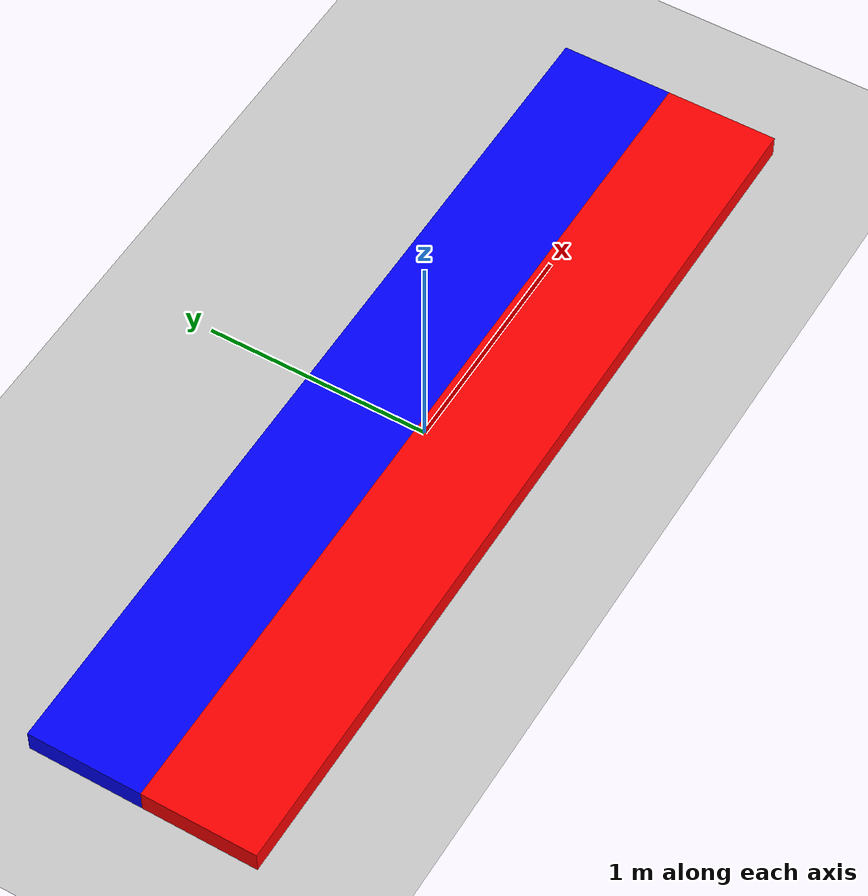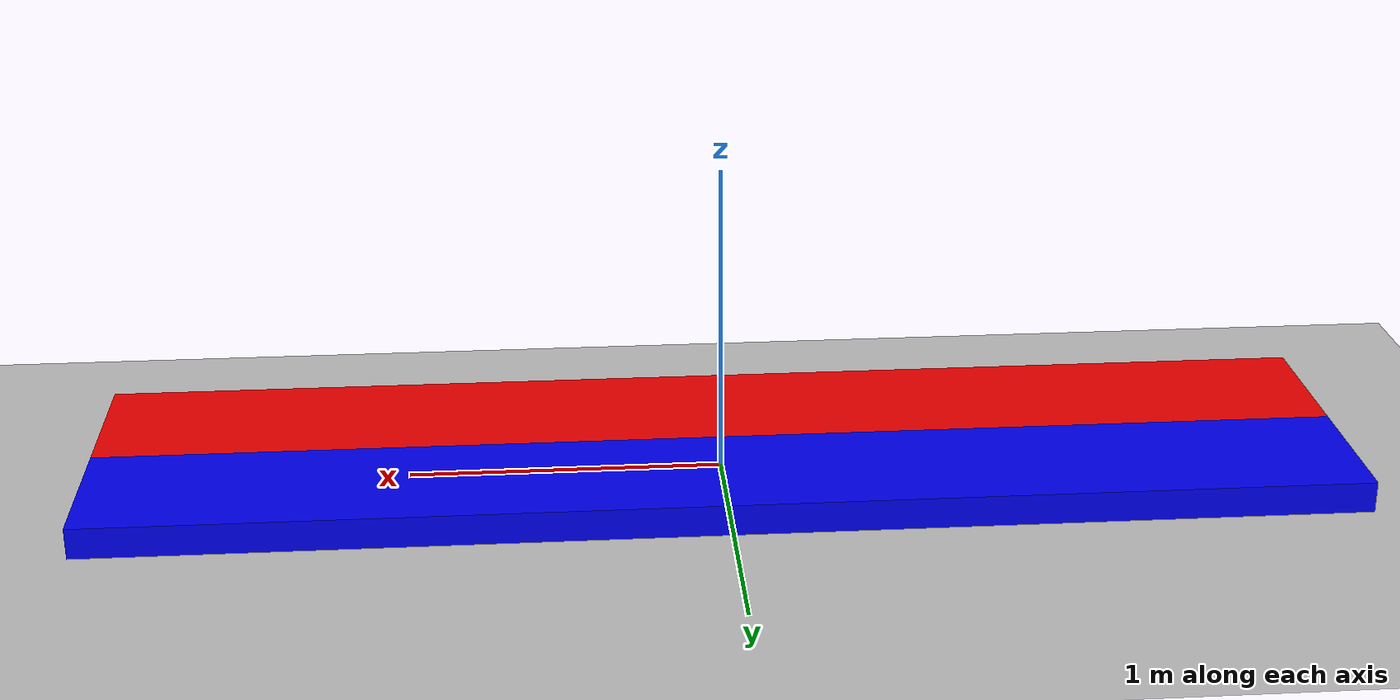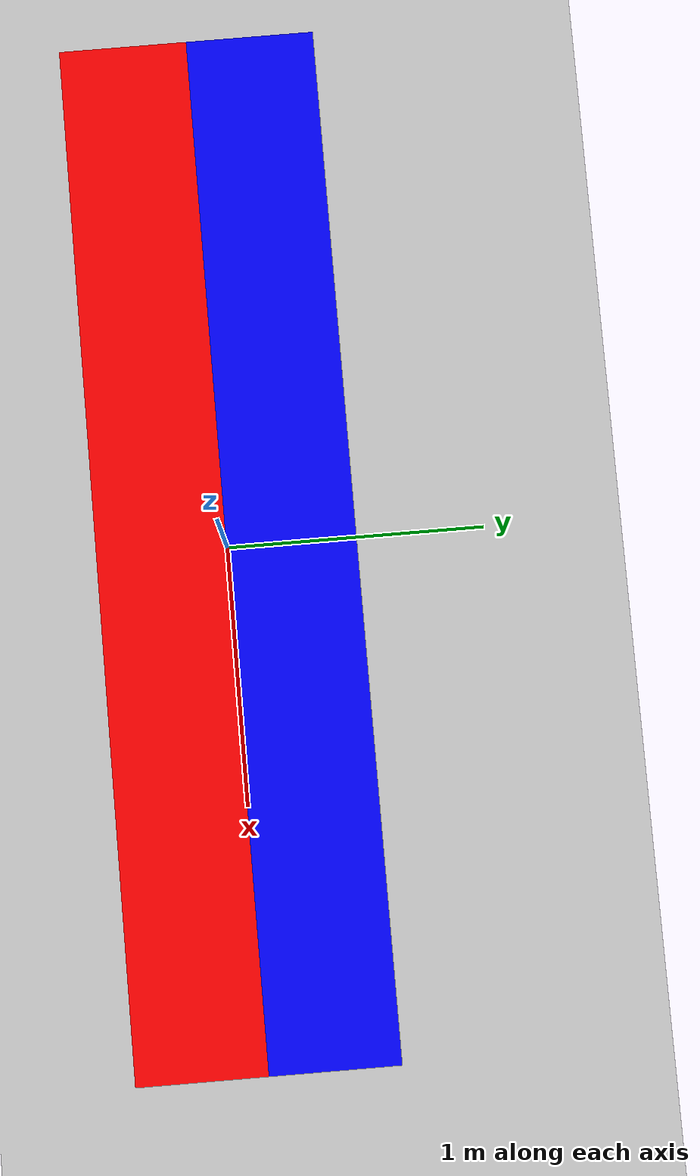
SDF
<?xml version="1.0" ?>
<sdf version="1.6">
    <world name="treadmill_world">
        <!-- Add the floor -->
        <include>
            <uri>model://ground_plane</uri>
        </include>

        <!-- Add the light -->
        <include>
            <uri>model://sun</uri>
        </include>

        <!-- Add the floor -->
        <include>
            <uri>model://split_belt_treadmill</uri>
        </include>
    </world>
</sdf>

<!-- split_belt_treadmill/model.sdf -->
<sdf version="1.6">
    <model name="split_belt_treadmill">
        <static>true</static>   <!-- keep the model static -->

        <!-- left belt -->
        <link name="left_belt">
            <pose>0 0.25 0.05 0 0 0</pose>
            <collosion name="left_belt_collision">
                <geometry>
                    <box><size>4.0 0.5 0.1</size></box>  <!-- length of X,Y,Z direction -->
                </geometry>
                <surface>
                    <friction>
                        <ode>
                            <mu>0.8</mu>
                            <mu2>0.8</mu2>
                        </ode>
                    </friction>
                </surface>
            </collosion>
            <visual name="left_belt_visual">
                <geometry>
                    <box><size>4.0 0.5 0.1</size></box>
                </geometry>
                <material>
                    <ambient>0.0 0.0 1.0 1.0</ambient>  <!-- blue -->
                </material>
            </visual>
        </link>

        <!-- right belt -->
        <link name="right_belt">
            <pose>0 -0.25 0.05 0 0 0</pose>
            <collosion name="right_belt_collision">
                <geometry>
                    <box><size>4.0 0.5 0.1</size></box>
                </geometry>
                <surface>
                    <friction>
                        <ode>
                            <mu>0.8</mu>
                            <mu2>0.8</mu2>
                        </ode>
                    </friction>
                </surface>
            </collosion>
            <visual name="right_belt_visual">
                <geometry>
                    <box><size>4.0 0.5 0.1</size></box>
                </geometry>
                <material>
                    <ambient>1.0 0.0 0.0 1.0</ambient>  <!-- red -->
                </material>
            </visual>
        </link>

        <!-- Define the joint so the belts can spin -->
        <joint name="left_belt_joint" type="revolute">
            <parent>world</parent>
            <child>left_belt</child>
            <axis>
                <xyz>1 0 0</xyz>  <!-- spin around x -->
                <limit>
                    <lower>-3</lower>
                    <upper>5</upper>
                </limit>
                <dynamics>
                    <damping>0.0</damping>
                </dynamics>
            </axis>
        </joint>

        <joint name="right_belt_joint" type="revolute">
            <parent>world</parent>
            <child>right_belt</child>
            <axis>
                <xyz>1 0 0</xyz>  <!-- spin around x -->
                <limit>
                    <lower>-3</lower>
                    <upper>5</upper>
                </limit>
                <dynamics>
                    <damping>0.0</damping>
                </dynamics>
            </axis>
        </joint>

    </model>
</sdf>
